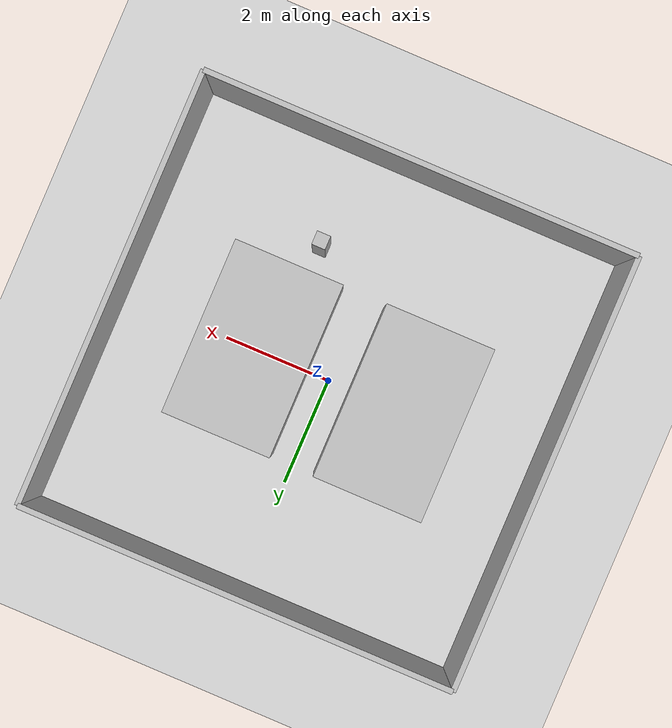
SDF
<?xml version="1.0"?>
<sdf version="1.6">
  <world name="narrow_passage">
    <include>
      <uri>model://sun</uri>
    </include>

    <include>
      <uri>model://ground_plane</uri>
    </include>

    <model name="wall_north">
      <static>true</static>
      <pose>0 4 0.5 0 0 0</pose>
      <link name="link">
        <collision name="collision">
          <geometry><box><size>8 0.1 1.0</size></box></geometry>
        </collision>
        <visual name="visual">
          <geometry><box><size>8 0.1 1.0</size></box></geometry>
        </visual>
      </link>
    </model>

    <model name="wall_south">
      <static>true</static>
      <pose>0 -4 0.5 0 0 0</pose>
      <link name="link">
        <collision name="collision">
          <geometry><box><size>8 0.1 1.0</size></box></geometry>
        </collision>
        <visual name="visual">
          <geometry><box><size>8 0.1 1.0</size></box></geometry>
        </visual>
      </link>
    </model>

    <model name="wall_east">
      <static>true</static>
      <pose>4 0 0.5 0 0 0</pose>
      <link name="link">
        <collision name="collision">
          <geometry><box><size>0.1 8 1.0</size></box></geometry>
        </collision>
        <visual name="visual">
          <geometry><box><size>0.1 8 1.0</size></box></geometry>
        </visual>
      </link>
    </model>

    <model name="wall_west">
      <static>true</static>
      <pose>-4 0 0.5 0 0 0</pose>
      <link name="link">
        <collision name="collision">
          <geometry><box><size>0.1 8 1.0</size></box></geometry>
        </collision>
        <visual name="visual">
          <geometry><box><size>0.1 8 1.0</size></box></geometry>
        </visual>
      </link>
    </model>

    <model name="left_block">
      <static>true</static>
      <pose>-1.4 0.0 0.45 0 0 0</pose>
      <link name="link">
        <collision name="collision">
          <geometry><box><size>2.0 3.2 0.9</size></box></geometry>
        </collision>
        <visual name="visual">
          <geometry><box><size>2.0 3.2 0.9</size></box></geometry>
        </visual>
      </link>
    </model>

    <model name="right_block">
      <static>true</static>
      <pose>1.4 0.0 0.45 0 0 0</pose>
      <link name="link">
        <collision name="collision">
          <geometry><box><size>2.0 3.2 0.9</size></box></geometry>
        </collision>
        <visual name="visual">
          <geometry><box><size>2.0 3.2 0.9</size></box></geometry>
        </visual>
      </link>
    </model>

    <model name="asymmetry_marker">
      <static>true</static>
      <pose>1.05 -2.15 0.45 0 0 0</pose>
      <link name="link">
        <collision name="collision">
          <geometry><box><size>0.25 0.25 0.9</size></box></geometry>
        </collision>
        <visual name="visual">
          <geometry><box><size>0.25 0.25 0.9</size></box></geometry>
        </visual>
      </link>
    </model>
  </world>
</sdf>
